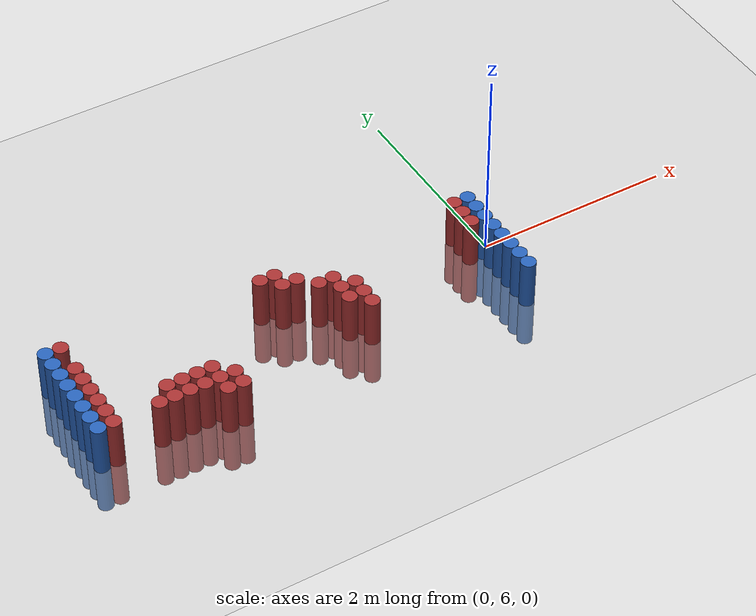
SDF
<sdf version="1.6">
 <world name="default">
  <model name="ground_plane">
   <static>1</static>
   <link name="link">
    <collision name="collision">
     <geometry><plane><normal>0 0 1</normal><size>100 100</size></plane></geometry>
     <surface><friction><ode><mu>100</mu><mu2>50</mu2></ode></friction></surface>
    </collision>
    <visual name="visual">
     <cast_shadows>0</cast_shadows>
     <geometry><plane><normal>0 0 1</normal><size>100 100</size></plane></geometry>
     <material>
      <script><uri>file://media/materials/scripts/gazebo.material</uri><name>Gazebo/Grey</name></script>
     </material>
    </visual>
   </link>
  </model>
  <model name="unit_cylinder_97">
   <static>1</static>
   <pose>-4.425000 5.325000 0.000000 0.000000 0.000000 0.000000</pose>
   <link name="link">
    <inertial>
     <mass>1</mass>
     <inertia><ixx>0.145833</ixx><ixy>0</ixy><ixz>0</ixz><iyy>0.145833</iyy><iyz>0</iyz><izz>0.125</izz></inertia>
    </inertial>
    <collision name="collision">
     <geometry><cylinder><radius>0.075000</radius><length>1</length></cylinder></geometry>
    </collision>
    <visual name="visual">
     <geometry><cylinder><radius>0.075000</radius><length>1</length></cylinder></geometry>
     <material>
      <ambient>0.152000 0.379000 0.720000 1</ambient>
      <diffuse>0.152000 0.379000 0.720000 1</diffuse>
     </material>
     <material>
      <script><name>Gazebo/Grey</name><uri>file://media/materials/scripts/gazebo.material</uri></script>
     </material>
    </visual>
   </link>
  </model>
  <model name="unit_cylinder_98">
   <static>1</static>
   <pose>-4.425000 5.475000 0.000000 0.000000 0.000000 0.000000</pose>
   <link name="link">
    <inertial>
     <mass>1</mass>
     <inertia><ixx>0.145833</ixx><ixy>0</ixy><ixz>0</ixz><iyy>0.145833</iyy><iyz>0</iyz><izz>0.125</izz></inertia>
    </inertial>
    <collision name="collision">
     <geometry><cylinder><radius>0.075000</radius><length>1</length></cylinder></geometry>
    </collision>
    <visual name="visual">
     <geometry><cylinder><radius>0.075000</radius><length>1</length></cylinder></geometry>
     <material>
      <ambient>0.152000 0.379000 0.720000 1</ambient>
      <diffuse>0.152000 0.379000 0.720000 1</diffuse>
     </material>
     <material>
      <script><name>Gazebo/Grey</name><uri>file://media/materials/scripts/gazebo.material</uri></script>
     </material>
    </visual>
   </link>
  </model>
  <model name="unit_cylinder_99">
   <static>1</static>
   <pose>-4.425000 5.625000 0.000000 0.000000 0.000000 0.000000</pose>
   <link name="link">
    <inertial>
     <mass>1</mass>
     <inertia><ixx>0.145833</ixx><ixy>0</ixy><ixz>0</ixz><iyy>0.145833</iyy><iyz>0</iyz><izz>0.125</izz></inertia>
    </inertial>
    <collision name="collision">
     <geometry><cylinder><radius>0.075000</radius><length>1</length></cylinder></geometry>
    </collision>
    <visual name="visual">
     <geometry><cylinder><radius>0.075000</radius><length>1</length></cylinder></geometry>
     <material>
      <ambient>0.152000 0.379000 0.720000 1</ambient>
      <diffuse>0.152000 0.379000 0.720000 1</diffuse>
     </material>
     <material>
      <script><name>Gazebo/Grey</name><uri>file://media/materials/scripts/gazebo.material</uri></script>
     </material>
    </visual>
   </link>
  </model>
  <model name="unit_cylinder_100">
   <static>1</static>
   <pose>-4.425000 5.775000 0.000000 0.000000 0.000000 0.000000</pose>
   <link name="link">
    <inertial>
     <mass>1</mass>
     <inertia><ixx>0.145833</ixx><ixy>0</ixy><ixz>0</ixz><iyy>0.145833</iyy><iyz>0</iyz><izz>0.125</izz></inertia>
    </inertial>
    <collision name="collision">
     <geometry><cylinder><radius>0.075000</radius><length>1</length></cylinder></geometry>
    </collision>
    <visual name="visual">
     <geometry><cylinder><radius>0.075000</radius><length>1</length></cylinder></geometry>
     <material>
      <ambient>0.152000 0.379000 0.720000 1</ambient>
      <diffuse>0.152000 0.379000 0.720000 1</diffuse>
     </material>
     <material>
      <script><name>Gazebo/Grey</name><uri>file://media/materials/scripts/gazebo.material</uri></script>
     </material>
    </visual>
   </link>
  </model>
  <model name="unit_cylinder_101">
   <static>1</static>
   <pose>-4.425000 5.925000 0.000000 0.000000 0.000000 0.000000</pose>
   <link name="link">
    <inertial>
     <mass>1</mass>
     <inertia><ixx>0.145833</ixx><ixy>0</ixy><ixz>0</ixz><iyy>0.145833</iyy><iyz>0</iyz><izz>0.125</izz></inertia>
    </inertial>
    <collision name="collision">
     <geometry><cylinder><radius>0.075000</radius><length>1</length></cylinder></geometry>
    </collision>
    <visual name="visual">
     <geometry><cylinder><radius>0.075000</radius><length>1</length></cylinder></geometry>
     <material>
      <ambient>0.152000 0.379000 0.720000 1</ambient>
      <diffuse>0.152000 0.379000 0.720000 1</diffuse>
     </material>
     <material>
      <script><name>Gazebo/Grey</name><uri>file://media/materials/scripts/gazebo.material</uri></script>
     </material>
    </visual>
   </link>
  </model>
  <model name="unit_cylinder_102">
   <static>1</static>
   <pose>-4.425000 6.075000 0.000000 0.000000 0.000000 0.000000</pose>
   <link name="link">
    <inertial>
     <mass>1</mass>
     <inertia><ixx>0.145833</ixx><ixy>0</ixy><ixz>0</ixz><iyy>0.145833</iyy><iyz>0</iyz><izz>0.125</izz></inertia>
    </inertial>
    <collision name="collision">
     <geometry><cylinder><radius>0.075000</radius><length>1</length></cylinder></geometry>
    </collision>
    <visual name="visual">
     <geometry><cylinder><radius>0.075000</radius><length>1</length></cylinder></geometry>
     <material>
      <ambient>0.152000 0.379000 0.720000 1</ambient>
      <diffuse>0.152000 0.379000 0.720000 1</diffuse>
     </material>
     <material>
      <script><name>Gazebo/Grey</name><uri>file://media/materials/scripts/gazebo.material</uri></script>
     </material>
    </visual>
   </link>
  </model>
  <model name="unit_cylinder_103">
   <static>1</static>
   <pose>-4.425000 6.225000 0.000000 0.000000 0.000000 0.000000</pose>
   <link name="link">
    <inertial>
     <mass>1</mass>
     <inertia><ixx>0.145833</ixx><ixy>0</ixy><ixz>0</ixz><iyy>0.145833</iyy><iyz>0</iyz><izz>0.125</izz></inertia>
    </inertial>
    <collision name="collision">
     <geometry><cylinder><radius>0.075000</radius><length>1</length></cylinder></geometry>
    </collision>
    <visual name="visual">
     <geometry><cylinder><radius>0.075000</radius><length>1</length></cylinder></geometry>
     <material>
      <ambient>0.152000 0.379000 0.720000 1</ambient>
      <diffuse>0.152000 0.379000 0.720000 1</diffuse>
     </material>
     <material>
      <script><name>Gazebo/Grey</name><uri>file://media/materials/scripts/gazebo.material</uri></script>
     </material>
    </visual>
   </link>
  </model>
  <model name="unit_cylinder_104">
   <static>1</static>
   <pose>-4.425000 6.375000 0.000000 0.000000 0.000000 0.000000</pose>
   <link name="link">
    <inertial>
     <mass>1</mass>
     <inertia><ixx>0.145833</ixx><ixy>0</ixy><ixz>0</ixz><iyy>0.145833</iyy><iyz>0</iyz><izz>0.125</izz></inertia>
    </inertial>
    <collision name="collision">
     <geometry><cylinder><radius>0.075000</radius><length>1</length></cylinder></geometry>
    </collision>
    <visual name="visual">
     <geometry><cylinder><radius>0.075000</radius><length>1</length></cylinder></geometry>
     <material>
      <ambient>0.152000 0.379000 0.720000 1</ambient>
      <diffuse>0.152000 0.379000 0.720000 1</diffuse>
     </material>
     <material>
      <script><name>Gazebo/Grey</name><uri>file://media/materials/scripts/gazebo.material</uri></script>
     </material>
    </visual>
   </link>
  </model>
  <model name="unit_cylinder_127">
   <static>1</static>
   <pose>-4.275000 5.325000 0.000000 0.000000 0.000000 0.000000</pose>
   <link name="link">
    <inertial>
     <mass>1</mass>
     <inertia><ixx>0.145833</ixx><ixy>0</ixy><ixz>0</ixz><iyy>0.145833</iyy><iyz>0</iyz><izz>0.125</izz></inertia>
    </inertial>
    <collision name="collision">
     <geometry><cylinder><radius>0.075000</radius><length>1</length></cylinder></geometry>
    </collision>
    <visual name="visual">
     <geometry><cylinder><radius>0.075000</radius><length>1</length></cylinder></geometry>
     <material>
      <ambient>0.648000 0.192000 0.192000 1</ambient>
      <diffuse>0.648000 0.192000 0.192000 1</diffuse>
     </material>
     <material>
      <script><name>Gazebo/Grey</name><uri>file://media/materials/scripts/gazebo.material</uri></script>
     </material>
    </visual>
   </link>
  </model>
  <model name="unit_cylinder_128">
   <static>1</static>
   <pose>-4.275000 5.475000 0.000000 0.000000 0.000000 0.000000</pose>
   <link name="link">
    <inertial>
     <mass>1</mass>
     <inertia><ixx>0.145833</ixx><ixy>0</ixy><ixz>0</ixz><iyy>0.145833</iyy><iyz>0</iyz><izz>0.125</izz></inertia>
    </inertial>
    <collision name="collision">
     <geometry><cylinder><radius>0.075000</radius><length>1</length></cylinder></geometry>
    </collision>
    <visual name="visual">
     <geometry><cylinder><radius>0.075000</radius><length>1</length></cylinder></geometry>
     <material>
      <ambient>0.648000 0.192000 0.192000 1</ambient>
      <diffuse>0.648000 0.192000 0.192000 1</diffuse>
     </material>
     <material>
      <script><name>Gazebo/Grey</name><uri>file://media/materials/scripts/gazebo.material</uri></script>
     </material>
    </visual>
   </link>
  </model>
  <model name="unit_cylinder_129">
   <static>1</static>
   <pose>-4.275000 5.625000 0.000000 0.000000 0.000000 0.000000</pose>
   <link name="link">
    <inertial>
     <mass>1</mass>
     <inertia><ixx>0.145833</ixx><ixy>0</ixy><ixz>0</ixz><iyy>0.145833</iyy><iyz>0</iyz><izz>0.125</izz></inertia>
    </inertial>
    <collision name="collision">
     <geometry><cylinder><radius>0.075000</radius><length>1</length></cylinder></geometry>
    </collision>
    <visual name="visual">
     <geometry><cylinder><radius>0.075000</radius><length>1</length></cylinder></geometry>
     <material>
      <ambient>0.648000 0.192000 0.192000 1</ambient>
      <diffuse>0.648000 0.192000 0.192000 1</diffuse>
     </material>
     <material>
      <script><name>Gazebo/Grey</name><uri>file://media/materials/scripts/gazebo.material</uri></script>
     </material>
    </visual>
   </link>
  </model>
  <model name="unit_cylinder_130">
   <static>1</static>
   <pose>-4.275000 5.775000 0.000000 0.000000 0.000000 0.000000</pose>
   <link name="link">
    <inertial>
     <mass>1</mass>
     <inertia><ixx>0.145833</ixx><ixy>0</ixy><ixz>0</ixz><iyy>0.145833</iyy><iyz>0</iyz><izz>0.125</izz></inertia>
    </inertial>
    <collision name="collision">
     <geometry><cylinder><radius>0.075000</radius><length>1</length></cylinder></geometry>
    </collision>
    <visual name="visual">
     <geometry><cylinder><radius>0.075000</radius><length>1</length></cylinder></geometry>
     <material>
      <ambient>0.648000 0.192000 0.192000 1</ambient>
      <diffuse>0.648000 0.192000 0.192000 1</diffuse>
     </material>
     <material>
      <script><name>Gazebo/Grey</name><uri>file://media/materials/scripts/gazebo.material</uri></script>
     </material>
    </visual>
   </link>
  </model>
  <model name="unit_cylinder_131">
   <static>1</static>
   <pose>-4.275000 5.925000 0.000000 0.000000 0.000000 0.000000</pose>
   <link name="link">
    <inertial>
     <mass>1</mass>
     <inertia><ixx>0.145833</ixx><ixy>0</ixy><ixz>0</ixz><iyy>0.145833</iyy><iyz>0</iyz><izz>0.125</izz></inertia>
    </inertial>
    <collision name="collision">
     <geometry><cylinder><radius>0.075000</radius><length>1</length></cylinder></geometry>
    </collision>
    <visual name="visual">
     <geometry><cylinder><radius>0.075000</radius><length>1</length></cylinder></geometry>
     <material>
      <ambient>0.648000 0.192000 0.192000 1</ambient>
      <diffuse>0.648000 0.192000 0.192000 1</diffuse>
     </material>
     <material>
      <script><name>Gazebo/Grey</name><uri>file://media/materials/scripts/gazebo.material</uri></script>
     </material>
    </visual>
   </link>
  </model>
  <model name="unit_cylinder_132">
   <static>1</static>
   <pose>-4.275000 6.075000 0.000000 0.000000 0.000000 0.000000</pose>
   <link name="link">
    <inertial>
     <mass>1</mass>
     <inertia><ixx>0.145833</ixx><ixy>0</ixy><ixz>0</ixz><iyy>0.145833</iyy><iyz>0</iyz><izz>0.125</izz></inertia>
    </inertial>
    <collision name="collision">
     <geometry><cylinder><radius>0.075000</radius><length>1</length></cylinder></geometry>
    </collision>
    <visual name="visual">
     <geometry><cylinder><radius>0.075000</radius><length>1</length></cylinder></geometry>
     <material>
      <ambient>0.648000 0.192000 0.192000 1</ambient>
      <diffuse>0.648000 0.192000 0.192000 1</diffuse>
     </material>
     <material>
      <script><name>Gazebo/Grey</name><uri>file://media/materials/scripts/gazebo.material</uri></script>
     </material>
    </visual>
   </link>
  </model>
  <model name="unit_cylinder_133">
   <static>1</static>
   <pose>-4.275000 6.375000 0.000000 0.000000 0.000000 0.000000</pose>
   <link name="link">
    <inertial>
     <mass>1</mass>
     <inertia><ixx>0.145833</ixx><ixy>0</ixy><ixz>0</ixz><iyy>0.145833</iyy><iyz>0</iyz><izz>0.125</izz></inertia>
    </inertial>
    <collision name="collision">
     <geometry><cylinder><radius>0.075000</radius><length>1</length></cylinder></geometry>
    </collision>
    <visual name="visual">
     <geometry><cylinder><radius>0.075000</radius><length>1</length></cylinder></geometry>
     <material>
      <ambient>0.648000 0.192000 0.192000 1</ambient>
      <diffuse>0.648000 0.192000 0.192000 1</diffuse>
     </material>
     <material>
      <script><name>Gazebo/Grey</name><uri>file://media/materials/scripts/gazebo.material</uri></script>
     </material>
    </visual>
   </link>
  </model>
  <model name="unit_cylinder_165">
   <static>1</static>
   <pose>-3.825000 5.325000 0.000000 0.000000 0.000000 0.000000</pose>
   <link name="link">
    <inertial>
     <mass>1</mass>
     <inertia><ixx>0.145833</ixx><ixy>0</ixy><ixz>0</ixz><iyy>0.145833</iyy><iyz>0</iyz><izz>0.125</izz></inertia>
    </inertial>
    <collision name="collision">
     <geometry><cylinder><radius>0.075000</radius><length>1</length></cylinder></geometry>
    </collision>
    <visual name="visual">
     <geometry><cylinder><radius>0.075000</radius><length>1</length></cylinder></geometry>
     <material>
      <ambient>0.648000 0.192000 0.192000 1</ambient>
      <diffuse>0.648000 0.192000 0.192000 1</diffuse>
     </material>
     <material>
      <script><name>Gazebo/Grey</name><uri>file://media/materials/scripts/gazebo.material</uri></script>
     </material>
    </visual>
   </link>
  </model>
  <model name="unit_cylinder_173">
   <static>1</static>
   <pose>-3.675000 5.325000 0.000000 0.000000 0.000000 0.000000</pose>
   <link name="link">
    <inertial>
     <mass>1</mass>
     <inertia><ixx>0.145833</ixx><ixy>0</ixy><ixz>0</ixz><iyy>0.145833</iyy><iyz>0</iyz><izz>0.125</izz></inertia>
    </inertial>
    <collision name="collision">
     <geometry><cylinder><radius>0.075000</radius><length>1</length></cylinder></geometry>
    </collision>
    <visual name="visual">
     <geometry><cylinder><radius>0.075000</radius><length>1</length></cylinder></geometry>
     <material>
      <ambient>0.648000 0.192000 0.192000 1</ambient>
      <diffuse>0.648000 0.192000 0.192000 1</diffuse>
     </material>
     <material>
      <script><name>Gazebo/Grey</name><uri>file://media/materials/scripts/gazebo.material</uri></script>
     </material>
    </visual>
   </link>
  </model>
  <model name="unit_cylinder_174">
   <static>1</static>
   <pose>-3.675000 5.475000 0.000000 0.000000 0.000000 0.000000</pose>
   <link name="link">
    <inertial>
     <mass>1</mass>
     <inertia><ixx>0.145833</ixx><ixy>0</ixy><ixz>0</ixz><iyy>0.145833</iyy><iyz>0</iyz><izz>0.125</izz></inertia>
    </inertial>
    <collision name="collision">
     <geometry><cylinder><radius>0.075000</radius><length>1</length></cylinder></geometry>
    </collision>
    <visual name="visual">
     <geometry><cylinder><radius>0.075000</radius><length>1</length></cylinder></geometry>
     <material>
      <ambient>0.648000 0.192000 0.192000 1</ambient>
      <diffuse>0.648000 0.192000 0.192000 1</diffuse>
     </material>
     <material>
      <script><name>Gazebo/Grey</name><uri>file://media/materials/scripts/gazebo.material</uri></script>
     </material>
    </visual>
   </link>
  </model>
  <model name="unit_cylinder_180">
   <static>1</static>
   <pose>-3.525000 5.325000 0.000000 0.000000 0.000000 0.000000</pose>
   <link name="link">
    <inertial>
     <mass>1</mass>
     <inertia><ixx>0.145833</ixx><ixy>0</ixy><ixz>0</ixz><iyy>0.145833</iyy><iyz>0</iyz><izz>0.125</izz></inertia>
    </inertial>
    <collision name="collision">
     <geometry><cylinder><radius>0.075000</radius><length>1</length></cylinder></geometry>
    </collision>
    <visual name="visual">
     <geometry><cylinder><radius>0.075000</radius><length>1</length></cylinder></geometry>
     <material>
      <ambient>0.648000 0.192000 0.192000 1</ambient>
      <diffuse>0.648000 0.192000 0.192000 1</diffuse>
     </material>
     <material>
      <script><name>Gazebo/Grey</name><uri>file://media/materials/scripts/gazebo.material</uri></script>
     </material>
    </visual>
   </link>
  </model>
  <model name="unit_cylinder_181">
   <static>1</static>
   <pose>-3.525000 5.475000 0.000000 0.000000 0.000000 0.000000</pose>
   <link name="link">
    <inertial>
     <mass>1</mass>
     <inertia><ixx>0.145833</ixx><ixy>0</ixy><ixz>0</ixz><iyy>0.145833</iyy><iyz>0</iyz><izz>0.125</izz></inertia>
    </inertial>
    <collision name="collision">
     <geometry><cylinder><radius>0.075000</radius><length>1</length></cylinder></geometry>
    </collision>
    <visual name="visual">
     <geometry><cylinder><radius>0.075000</radius><length>1</length></cylinder></geometry>
     <material>
      <ambient>0.648000 0.192000 0.192000 1</ambient>
      <diffuse>0.648000 0.192000 0.192000 1</diffuse>
     </material>
     <material>
      <script><name>Gazebo/Grey</name><uri>file://media/materials/scripts/gazebo.material</uri></script>
     </material>
    </visual>
   </link>
  </model>
  <model name="unit_cylinder_187">
   <static>1</static>
   <pose>-3.375000 5.325000 0.000000 0.000000 0.000000 0.000000</pose>
   <link name="link">
    <inertial>
     <mass>1</mass>
     <inertia><ixx>0.145833</ixx><ixy>0</ixy><ixz>0</ixz><iyy>0.145833</iyy><iyz>0</iyz><izz>0.125</izz></inertia>
    </inertial>
    <collision name="collision">
     <geometry><cylinder><radius>0.075000</radius><length>1</length></cylinder></geometry>
    </collision>
    <visual name="visual">
     <geometry><cylinder><radius>0.075000</radius><length>1</length></cylinder></geometry>
     <material>
      <ambient>0.648000 0.192000 0.192000 1</ambient>
      <diffuse>0.648000 0.192000 0.192000 1</diffuse>
     </material>
     <material>
      <script><name>Gazebo/Grey</name><uri>file://media/materials/scripts/gazebo.material</uri></script>
     </material>
    </visual>
   </link>
  </model>
  <model name="unit_cylinder_188">
   <static>1</static>
   <pose>-3.375000 5.475000 0.000000 0.000000 0.000000 0.000000</pose>
   <link name="link">
    <inertial>
     <mass>1</mass>
     <inertia><ixx>0.145833</ixx><ixy>0</ixy><ixz>0</ixz><iyy>0.145833</iyy><iyz>0</iyz><izz>0.125</izz></inertia>
    </inertial>
    <collision name="collision">
     <geometry><cylinder><radius>0.075000</radius><length>1</length></cylinder></geometry>
    </collision>
    <visual name="visual">
     <geometry><cylinder><radius>0.075000</radius><length>1</length></cylinder></geometry>
     <material>
      <ambient>0.648000 0.192000 0.192000 1</ambient>
      <diffuse>0.648000 0.192000 0.192000 1</diffuse>
     </material>
     <material>
      <script><name>Gazebo/Grey</name><uri>file://media/materials/scripts/gazebo.material</uri></script>
     </material>
    </visual>
   </link>
  </model>
  <model name="unit_cylinder_195">
   <static>1</static>
   <pose>-3.225000 5.175000 0.000000 0.000000 0.000000 0.000000</pose>
   <link name="link">
    <inertial>
     <mass>1</mass>
     <inertia><ixx>0.145833</ixx><ixy>0</ixy><ixz>0</ixz><iyy>0.145833</iyy><iyz>0</iyz><izz>0.125</izz></inertia>
    </inertial>
    <collision name="collision">
     <geometry><cylinder><radius>0.075000</radius><length>1</length></cylinder></geometry>
    </collision>
    <visual name="visual">
     <geometry><cylinder><radius>0.075000</radius><length>1</length></cylinder></geometry>
     <material>
      <ambient>0.648000 0.192000 0.192000 1</ambient>
      <diffuse>0.648000 0.192000 0.192000 1</diffuse>
     </material>
     <material>
      <script><name>Gazebo/Grey</name><uri>file://media/materials/scripts/gazebo.material</uri></script>
     </material>
    </visual>
   </link>
  </model>
  <model name="unit_cylinder_196">
   <static>1</static>
   <pose>-3.225000 5.325000 0.000000 0.000000 0.000000 0.000000</pose>
   <link name="link">
    <inertial>
     <mass>1</mass>
     <inertia><ixx>0.145833</ixx><ixy>0</ixy><ixz>0</ixz><iyy>0.145833</iyy><iyz>0</iyz><izz>0.125</izz></inertia>
    </inertial>
    <collision name="collision">
     <geometry><cylinder><radius>0.075000</radius><length>1</length></cylinder></geometry>
    </collision>
    <visual name="visual">
     <geometry><cylinder><radius>0.075000</radius><length>1</length></cylinder></geometry>
     <material>
      <ambient>0.648000 0.192000 0.192000 1</ambient>
      <diffuse>0.648000 0.192000 0.192000 1</diffuse>
     </material>
     <material>
      <script><name>Gazebo/Grey</name><uri>file://media/materials/scripts/gazebo.material</uri></script>
     </material>
    </visual>
   </link>
  </model>
  <model name="unit_cylinder_197">
   <static>1</static>
   <pose>-3.225000 5.475000 0.000000 0.000000 0.000000 0.000000</pose>
   <link name="link">
    <inertial>
     <mass>1</mass>
     <inertia><ixx>0.145833</ixx><ixy>0</ixy><ixz>0</ixz><iyy>0.145833</iyy><iyz>0</iyz><izz>0.125</izz></inertia>
    </inertial>
    <collision name="collision">
     <geometry><cylinder><radius>0.075000</radius><length>1</length></cylinder></geometry>
    </collision>
    <visual name="visual">
     <geometry><cylinder><radius>0.075000</radius><length>1</length></cylinder></geometry>
     <material>
      <ambient>0.648000 0.192000 0.192000 1</ambient>
      <diffuse>0.648000 0.192000 0.192000 1</diffuse>
     </material>
     <material>
      <script><name>Gazebo/Grey</name><uri>file://media/materials/scripts/gazebo.material</uri></script>
     </material>
    </visual>
   </link>
  </model>
  <model name="unit_cylinder_204">
   <static>1</static>
   <pose>-3.075000 5.175000 0.000000 0.000000 0.000000 0.000000</pose>
   <link name="link">
    <inertial>
     <mass>1</mass>
     <inertia><ixx>0.145833</ixx><ixy>0</ixy><ixz>0</ixz><iyy>0.145833</iyy><iyz>0</iyz><izz>0.125</izz></inertia>
    </inertial>
    <collision name="collision">
     <geometry><cylinder><radius>0.075000</radius><length>1</length></cylinder></geometry>
    </collision>
    <visual name="visual">
     <geometry><cylinder><radius>0.075000</radius><length>1</length></cylinder></geometry>
     <material>
      <ambient>0.648000 0.192000 0.192000 1</ambient>
      <diffuse>0.648000 0.192000 0.192000 1</diffuse>
     </material>
     <material>
      <script><name>Gazebo/Grey</name><uri>file://media/materials/scripts/gazebo.material</uri></script>
     </material>
    </visual>
   </link>
  </model>
  <model name="unit_cylinder_205">
   <static>1</static>
   <pose>-3.075000 5.325000 0.000000 0.000000 0.000000 0.000000</pose>
   <link name="link">
    <inertial>
     <mass>1</mass>
     <inertia><ixx>0.145833</ixx><ixy>0</ixy><ixz>0</ixz><iyy>0.145833</iyy><iyz>0</iyz><izz>0.125</izz></inertia>
    </inertial>
    <collision name="collision">
     <geometry><cylinder><radius>0.075000</radius><length>1</length></cylinder></geometry>
    </collision>
    <visual name="visual">
     <geometry><cylinder><radius>0.075000</radius><length>1</length></cylinder></geometry>
     <material>
      <ambient>0.648000 0.192000 0.192000 1</ambient>
      <diffuse>0.648000 0.192000 0.192000 1</diffuse>
     </material>
     <material>
      <script><name>Gazebo/Grey</name><uri>file://media/materials/scripts/gazebo.material</uri></script>
     </material>
    </visual>
   </link>
  </model>
  <model name="unit_cylinder_230">
   <static>1</static>
   <pose>-2.325000 6.225000 0.000000 0.000000 0.000000 0.000000</pose>
   <link name="link">
    <inertial>
     <mass>1</mass>
     <inertia><ixx>0.145833</ixx><ixy>0</ixy><ixz>0</ixz><iyy>0.145833</iyy><iyz>0</iyz><izz>0.125</izz></inertia>
    </inertial>
    <collision name="collision">
     <geometry><cylinder><radius>0.075000</radius><length>1</length></cylinder></geometry>
    </collision>
    <visual name="visual">
     <geometry><cylinder><radius>0.075000</radius><length>1</length></cylinder></geometry>
     <material>
      <ambient>0.648000 0.192000 0.192000 1</ambient>
      <diffuse>0.648000 0.192000 0.192000 1</diffuse>
     </material>
     <material>
      <script><name>Gazebo/Grey</name><uri>file://media/materials/scripts/gazebo.material</uri></script>
     </material>
    </visual>
   </link>
  </model>
  <model name="unit_cylinder_237">
   <static>1</static>
   <pose>-2.175000 6.075000 0.000000 0.000000 0.000000 0.000000</pose>
   <link name="link">
    <inertial>
     <mass>1</mass>
     <inertia><ixx>0.145833</ixx><ixy>0</ixy><ixz>0</ixz><iyy>0.145833</iyy><iyz>0</iyz><izz>0.125</izz></inertia>
    </inertial>
    <collision name="collision">
     <geometry><cylinder><radius>0.075000</radius><length>1</length></cylinder></geometry>
    </collision>
    <visual name="visual">
     <geometry><cylinder><radius>0.075000</radius><length>1</length></cylinder></geometry>
     <material>
      <ambient>0.648000 0.192000 0.192000 1</ambient>
      <diffuse>0.648000 0.192000 0.192000 1</diffuse>
     </material>
     <material>
      <script><name>Gazebo/Grey</name><uri>file://media/materials/scripts/gazebo.material</uri></script>
     </material>
    </visual>
   </link>
  </model>
  <model name="unit_cylinder_238">
   <static>1</static>
   <pose>-2.175000 6.225000 0.000000 0.000000 0.000000 0.000000</pose>
   <link name="link">
    <inertial>
     <mass>1</mass>
     <inertia><ixx>0.145833</ixx><ixy>0</ixy><ixz>0</ixz><iyy>0.145833</iyy><iyz>0</iyz><izz>0.125</izz></inertia>
    </inertial>
    <collision name="collision">
     <geometry><cylinder><radius>0.075000</radius><length>1</length></cylinder></geometry>
    </collision>
    <visual name="visual">
     <geometry><cylinder><radius>0.075000</radius><length>1</length></cylinder></geometry>
     <material>
      <ambient>0.648000 0.192000 0.192000 1</ambient>
      <diffuse>0.648000 0.192000 0.192000 1</diffuse>
     </material>
     <material>
      <script><name>Gazebo/Grey</name><uri>file://media/materials/scripts/gazebo.material</uri></script>
     </material>
    </visual>
   </link>
  </model>
  <model name="unit_cylinder_243">
   <static>1</static>
   <pose>-2.025000 6.075000 0.000000 0.000000 0.000000 0.000000</pose>
   <link name="link">
    <inertial>
     <mass>1</mass>
     <inertia><ixx>0.145833</ixx><ixy>0</ixy><ixz>0</ixz><iyy>0.145833</iyy><iyz>0</iyz><izz>0.125</izz></inertia>
    </inertial>
    <collision name="collision">
     <geometry><cylinder><radius>0.075000</radius><length>1</length></cylinder></geometry>
    </collision>
    <visual name="visual">
     <geometry><cylinder><radius>0.075000</radius><length>1</length></cylinder></geometry>
     <material>
      <ambient>0.648000 0.192000 0.192000 1</ambient>
      <diffuse>0.648000 0.192000 0.192000 1</diffuse>
     </material>
     <material>
      <script><name>Gazebo/Grey</name><uri>file://media/materials/scripts/gazebo.material</uri></script>
     </material>
    </visual>
   </link>
  </model>
  <model name="unit_cylinder_250">
   <static>1</static>
   <pose>-1.875000 5.925000 0.000000 0.000000 0.000000 0.000000</pose>
   <link name="link">
    <inertial>
     <mass>1</mass>
     <inertia><ixx>0.145833</ixx><ixy>0</ixy><ixz>0</ixz><iyy>0.145833</iyy><iyz>0</iyz><izz>0.125</izz></inertia>
    </inertial>
    <collision name="collision">
     <geometry><cylinder><radius>0.075000</radius><length>1</length></cylinder></geometry>
    </collision>
    <visual name="visual">
     <geometry><cylinder><radius>0.075000</radius><length>1</length></cylinder></geometry>
     <material>
      <ambient>0.648000 0.192000 0.192000 1</ambient>
      <diffuse>0.648000 0.192000 0.192000 1</diffuse>
     </material>
     <material>
      <script><name>Gazebo/Grey</name><uri>file://media/materials/scripts/gazebo.material</uri></script>
     </material>
    </visual>
   </link>
  </model>
  <model name="unit_cylinder_260">
   <static>1</static>
   <pose>-1.725000 5.625000 0.000000 0.000000 0.000000 0.000000</pose>
   <link name="link">
    <inertial>
     <mass>1</mass>
     <inertia><ixx>0.145833</ixx><ixy>0</ixy><ixz>0</ixz><iyy>0.145833</iyy><iyz>0</iyz><izz>0.125</izz></inertia>
    </inertial>
    <collision name="collision">
     <geometry><cylinder><radius>0.075000</radius><length>1</length></cylinder></geometry>
    </collision>
    <visual name="visual">
     <geometry><cylinder><radius>0.075000</radius><length>1</length></cylinder></geometry>
     <material>
      <ambient>0.648000 0.192000 0.192000 1</ambient>
      <diffuse>0.648000 0.192000 0.192000 1</diffuse>
     </material>
     <material>
      <script><name>Gazebo/Grey</name><uri>file://media/materials/scripts/gazebo.material</uri></script>
     </material>
    </visual>
   </link>
  </model>
  <model name="unit_cylinder_261">
   <static>1</static>
   <pose>-1.725000 5.775000 0.000000 0.000000 0.000000 0.000000</pose>
   <link name="link">
    <inertial>
     <mass>1</mass>
     <inertia><ixx>0.145833</ixx><ixy>0</ixy><ixz>0</ixz><iyy>0.145833</iyy><iyz>0</iyz><izz>0.125</izz></inertia>
    </inertial>
    <collision name="collision">
     <geometry><cylinder><radius>0.075000</radius><length>1</length></cylinder></geometry>
    </collision>
    <visual name="visual">
     <geometry><cylinder><radius>0.075000</radius><length>1</length></cylinder></geometry>
     <material>
      <ambient>0.648000 0.192000 0.192000 1</ambient>
      <diffuse>0.648000 0.192000 0.192000 1</diffuse>
     </material>
     <material>
      <script><name>Gazebo/Grey</name><uri>file://media/materials/scripts/gazebo.material</uri></script>
     </material>
    </visual>
   </link>
  </model>
  <model name="unit_cylinder_262">
   <static>1</static>
   <pose>-1.725000 5.925000 0.000000 0.000000 0.000000 0.000000</pose>
   <link name="link">
    <inertial>
     <mass>1</mass>
     <inertia><ixx>0.145833</ixx><ixy>0</ixy><ixz>0</ixz><iyy>0.145833</iyy><iyz>0</iyz><izz>0.125</izz></inertia>
    </inertial>
    <collision name="collision">
     <geometry><cylinder><radius>0.075000</radius><length>1</length></cylinder></geometry>
    </collision>
    <visual name="visual">
     <geometry><cylinder><radius>0.075000</radius><length>1</length></cylinder></geometry>
     <material>
      <ambient>0.648000 0.192000 0.192000 1</ambient>
      <diffuse>0.648000 0.192000 0.192000 1</diffuse>
     </material>
     <material>
      <script><name>Gazebo/Grey</name><uri>file://media/materials/scripts/gazebo.material</uri></script>
     </material>
    </visual>
   </link>
  </model>
  <model name="unit_cylinder_271">
   <static>1</static>
   <pose>-1.575000 5.475000 0.000000 0.000000 0.000000 0.000000</pose>
   <link name="link">
    <inertial>
     <mass>1</mass>
     <inertia><ixx>0.145833</ixx><ixy>0</ixy><ixz>0</ixz><iyy>0.145833</iyy><iyz>0</iyz><izz>0.125</izz></inertia>
    </inertial>
    <collision name="collision">
     <geometry><cylinder><radius>0.075000</radius><length>1</length></cylinder></geometry>
    </collision>
    <visual name="visual">
     <geometry><cylinder><radius>0.075000</radius><length>1</length></cylinder></geometry>
     <material>
      <ambient>0.648000 0.192000 0.192000 1</ambient>
      <diffuse>0.648000 0.192000 0.192000 1</diffuse>
     </material>
     <material>
      <script><name>Gazebo/Grey</name><uri>file://media/materials/scripts/gazebo.material</uri></script>
     </material>
    </visual>
   </link>
  </model>
  <model name="unit_cylinder_272">
   <static>1</static>
   <pose>-1.575000 5.625000 0.000000 0.000000 0.000000 0.000000</pose>
   <link name="link">
    <inertial>
     <mass>1</mass>
     <inertia><ixx>0.145833</ixx><ixy>0</ixy><ixz>0</ixz><iyy>0.145833</iyy><iyz>0</iyz><izz>0.125</izz></inertia>
    </inertial>
    <collision name="collision">
     <geometry><cylinder><radius>0.075000</radius><length>1</length></cylinder></geometry>
    </collision>
    <visual name="visual">
     <geometry><cylinder><radius>0.075000</radius><length>1</length></cylinder></geometry>
     <material>
      <ambient>0.648000 0.192000 0.192000 1</ambient>
      <diffuse>0.648000 0.192000 0.192000 1</diffuse>
     </material>
     <material>
      <script><name>Gazebo/Grey</name><uri>file://media/materials/scripts/gazebo.material</uri></script>
     </material>
    </visual>
   </link>
  </model>
  <model name="unit_cylinder_273">
   <static>1</static>
   <pose>-1.575000 5.775000 0.000000 0.000000 0.000000 0.000000</pose>
   <link name="link">
    <inertial>
     <mass>1</mass>
     <inertia><ixx>0.145833</ixx><ixy>0</ixy><ixz>0</ixz><iyy>0.145833</iyy><iyz>0</iyz><izz>0.125</izz></inertia>
    </inertial>
    <collision name="collision">
     <geometry><cylinder><radius>0.075000</radius><length>1</length></cylinder></geometry>
    </collision>
    <visual name="visual">
     <geometry><cylinder><radius>0.075000</radius><length>1</length></cylinder></geometry>
     <material>
      <ambient>0.648000 0.192000 0.192000 1</ambient>
      <diffuse>0.648000 0.192000 0.192000 1</diffuse>
     </material>
     <material>
      <script><name>Gazebo/Grey</name><uri>file://media/materials/scripts/gazebo.material</uri></script>
     </material>
    </visual>
   </link>
  </model>
  <model name="unit_cylinder_294">
   <static>1</static>
   <pose>-0.225000 5.925000 0.000000 0.000000 0.000000 0.000000</pose>
   <link name="link">
    <inertial>
     <mass>1</mass>
     <inertia><ixx>0.145833</ixx><ixy>0</ixy><ixz>0</ixz><iyy>0.145833</iyy><iyz>0</iyz><izz>0.125</izz></inertia>
    </inertial>
    <collision name="collision">
     <geometry><cylinder><radius>0.075000</radius><length>1</length></cylinder></geometry>
    </collision>
    <visual name="visual">
     <geometry><cylinder><radius>0.075000</radius><length>1</length></cylinder></geometry>
     <material>
      <ambient>0.648000 0.192000 0.192000 1</ambient>
      <diffuse>0.648000 0.192000 0.192000 1</diffuse>
     </material>
     <material>
      <script><name>Gazebo/Grey</name><uri>file://media/materials/scripts/gazebo.material</uri></script>
     </material>
    </visual>
   </link>
  </model>
  <model name="unit_cylinder_295">
   <static>1</static>
   <pose>-0.225000 6.075000 0.000000 0.000000 0.000000 0.000000</pose>
   <link name="link">
    <inertial>
     <mass>1</mass>
     <inertia><ixx>0.145833</ixx><ixy>0</ixy><ixz>0</ixz><iyy>0.145833</iyy><iyz>0</iyz><izz>0.125</izz></inertia>
    </inertial>
    <collision name="collision">
     <geometry><cylinder><radius>0.075000</radius><length>1</length></cylinder></geometry>
    </collision>
    <visual name="visual">
     <geometry><cylinder><radius>0.075000</radius><length>1</length></cylinder></geometry>
     <material>
      <ambient>0.648000 0.192000 0.192000 1</ambient>
      <diffuse>0.648000 0.192000 0.192000 1</diffuse>
     </material>
     <material>
      <script><name>Gazebo/Grey</name><uri>file://media/materials/scripts/gazebo.material</uri></script>
     </material>
    </visual>
   </link>
  </model>
  <model name="unit_cylinder_296">
   <static>1</static>
   <pose>-0.225000 6.225000 0.000000 0.000000 0.000000 0.000000</pose>
   <link name="link">
    <inertial>
     <mass>1</mass>
     <inertia><ixx>0.145833</ixx><ixy>0</ixy><ixz>0</ixz><iyy>0.145833</iyy><iyz>0</iyz><izz>0.125</izz></inertia>
    </inertial>
    <collision name="collision">
     <geometry><cylinder><radius>0.075000</radius><length>1</length></cylinder></geometry>
    </collision>
    <visual name="visual">
     <geometry><cylinder><radius>0.075000</radius><length>1</length></cylinder></geometry>
     <material>
      <ambient>0.648000 0.192000 0.192000 1</ambient>
      <diffuse>0.648000 0.192000 0.192000 1</diffuse>
     </material>
     <material>
      <script><name>Gazebo/Grey</name><uri>file://media/materials/scripts/gazebo.material</uri></script>
     </material>
    </visual>
   </link>
  </model>
  <model name="unit_cylinder_312">
   <static>1</static>
   <pose>-0.075000 5.175000 0.000000 0.000000 0.000000 0.000000</pose>
   <link name="link">
    <inertial>
     <mass>1</mass>
     <inertia><ixx>0.145833</ixx><ixy>0</ixy><ixz>0</ixz><iyy>0.145833</iyy><iyz>0</iyz><izz>0.125</izz></inertia>
    </inertial>
    <collision name="collision">
     <geometry><cylinder><radius>0.075000</radius><length>1</length></cylinder></geometry>
    </collision>
    <visual name="visual">
     <geometry><cylinder><radius>0.075000</radius><length>1</length></cylinder></geometry>
     <material>
      <ambient>0.152000 0.379000 0.720000 1</ambient>
      <diffuse>0.152000 0.379000 0.720000 1</diffuse>
     </material>
     <material>
      <script><name>Gazebo/Grey</name><uri>file://media/materials/scripts/gazebo.material</uri></script>
     </material>
    </visual>
   </link>
  </model>
  <model name="unit_cylinder_313">
   <static>1</static>
   <pose>-0.075000 5.325000 0.000000 0.000000 0.000000 0.000000</pose>
   <link name="link">
    <inertial>
     <mass>1</mass>
     <inertia><ixx>0.145833</ixx><ixy>0</ixy><ixz>0</ixz><iyy>0.145833</iyy><iyz>0</iyz><izz>0.125</izz></inertia>
    </inertial>
    <collision name="collision">
     <geometry><cylinder><radius>0.075000</radius><length>1</length></cylinder></geometry>
    </collision>
    <visual name="visual">
     <geometry><cylinder><radius>0.075000</radius><length>1</length></cylinder></geometry>
     <material>
      <ambient>0.152000 0.379000 0.720000 1</ambient>
      <diffuse>0.152000 0.379000 0.720000 1</diffuse>
     </material>
     <material>
      <script><name>Gazebo/Grey</name><uri>file://media/materials/scripts/gazebo.material</uri></script>
     </material>
    </visual>
   </link>
  </model>
  <model name="unit_cylinder_314">
   <static>1</static>
   <pose>-0.075000 5.475000 0.000000 0.000000 0.000000 0.000000</pose>
   <link name="link">
    <inertial>
     <mass>1</mass>
     <inertia><ixx>0.145833</ixx><ixy>0</ixy><ixz>0</ixz><iyy>0.145833</iyy><iyz>0</iyz><izz>0.125</izz></inertia>
    </inertial>
    <collision name="collision">
     <geometry><cylinder><radius>0.075000</radius><length>1</length></cylinder></geometry>
    </collision>
    <visual name="visual">
     <geometry><cylinder><radius>0.075000</radius><length>1</length></cylinder></geometry>
     <material>
      <ambient>0.152000 0.379000 0.720000 1</ambient>
      <diffuse>0.152000 0.379000 0.720000 1</diffuse>
     </material>
     <material>
      <script><name>Gazebo/Grey</name><uri>file://media/materials/scripts/gazebo.material</uri></script>
     </material>
    </visual>
   </link>
  </model>
  <model name="unit_cylinder_315">
   <static>1</static>
   <pose>-0.075000 5.625000 0.000000 0.000000 0.000000 0.000000</pose>
   <link name="link">
    <inertial>
     <mass>1</mass>
     <inertia><ixx>0.145833</ixx><ixy>0</ixy><ixz>0</ixz><iyy>0.145833</iyy><iyz>0</iyz><izz>0.125</izz></inertia>
    </inertial>
    <collision name="collision">
     <geometry><cylinder><radius>0.075000</radius><length>1</length></cylinder></geometry>
    </collision>
    <visual name="visual">
     <geometry><cylinder><radius>0.075000</radius><length>1</length></cylinder></geometry>
     <material>
      <ambient>0.152000 0.379000 0.720000 1</ambient>
      <diffuse>0.152000 0.379000 0.720000 1</diffuse>
     </material>
     <material>
      <script><name>Gazebo/Grey</name><uri>file://media/materials/scripts/gazebo.material</uri></script>
     </material>
    </visual>
   </link>
  </model>
  <model name="unit_cylinder_316">
   <static>1</static>
   <pose>-0.075000 5.775000 0.000000 0.000000 0.000000 0.000000</pose>
   <link name="link">
    <inertial>
     <mass>1</mass>
     <inertia><ixx>0.145833</ixx><ixy>0</ixy><ixz>0</ixz><iyy>0.145833</iyy><iyz>0</iyz><izz>0.125</izz></inertia>
    </inertial>
    <collision name="collision">
     <geometry><cylinder><radius>0.075000</radius><length>1</length></cylinder></geometry>
    </collision>
    <visual name="visual">
     <geometry><cylinder><radius>0.075000</radius><length>1</length></cylinder></geometry>
     <material>
      <ambient>0.152000 0.379000 0.720000 1</ambient>
      <diffuse>0.152000 0.379000 0.720000 1</diffuse>
     </material>
     <material>
      <script><name>Gazebo/Grey</name><uri>file://media/materials/scripts/gazebo.material</uri></script>
     </material>
    </visual>
   </link>
  </model>
  <model name="unit_cylinder_317">
   <static>1</static>
   <pose>-0.075000 5.925000 0.000000 0.000000 0.000000 0.000000</pose>
   <link name="link">
    <inertial>
     <mass>1</mass>
     <inertia><ixx>0.145833</ixx><ixy>0</ixy><ixz>0</ixz><iyy>0.145833</iyy><iyz>0</iyz><izz>0.125</izz></inertia>
    </inertial>
    <collision name="collision">
     <geometry><cylinder><radius>0.075000</radius><length>1</length></cylinder></geometry>
    </collision>
    <visual name="visual">
     <geometry><cylinder><radius>0.075000</radius><length>1</length></cylinder></geometry>
     <material>
      <ambient>0.152000 0.379000 0.720000 1</ambient>
      <diffuse>0.152000 0.379000 0.720000 1</diffuse>
     </material>
     <material>
      <script><name>Gazebo/Grey</name><uri>file://media/materials/scripts/gazebo.material</uri></script>
     </material>
    </visual>
   </link>
  </model>
  <model name="unit_cylinder_318">
   <static>1</static>
   <pose>-0.075000 6.075000 0.000000 0.000000 0.000000 0.000000</pose>
   <link name="link">
    <inertial>
     <mass>1</mass>
     <inertia><ixx>0.145833</ixx><ixy>0</ixy><ixz>0</ixz><iyy>0.145833</iyy><iyz>0</iyz><izz>0.125</izz></inertia>
    </inertial>
    <collision name="collision">
     <geometry><cylinder><radius>0.075000</radius><length>1</length></cylinder></geometry>
    </collision>
    <visual name="visual">
     <geometry><cylinder><radius>0.075000</radius><length>1</length></cylinder></geometry>
     <material>
      <ambient>0.152000 0.379000 0.720000 1</ambient>
      <diffuse>0.152000 0.379000 0.720000 1</diffuse>
     </material>
     <material>
      <script><name>Gazebo/Grey</name><uri>file://media/materials/scripts/gazebo.material</uri></script>
     </material>
    </visual>
   </link>
  </model>
  <model name="unit_cylinder_319">
   <static>1</static>
   <pose>-0.075000 6.225000 0.000000 0.000000 0.000000 0.000000</pose>
   <link name="link">
    <inertial>
     <mass>1</mass>
     <inertia><ixx>0.145833</ixx><ixy>0</ixy><ixz>0</ixz><iyy>0.145833</iyy><iyz>0</iyz><izz>0.125</izz></inertia>
    </inertial>
    <collision name="collision">
     <geometry><cylinder><radius>0.075000</radius><length>1</length></cylinder></geometry>
    </collision>
    <visual name="visual">
     <geometry><cylinder><radius>0.075000</radius><length>1</length></cylinder></geometry>
     <material>
      <ambient>0.152000 0.379000 0.720000 1</ambient>
      <diffuse>0.152000 0.379000 0.720000 1</diffuse>
     </material>
     <material>
      <script><name>Gazebo/Grey</name><uri>file://media/materials/scripts/gazebo.material</uri></script>
     </material>
    </visual>
   </link>
  </model>
 </world>
</sdf>
